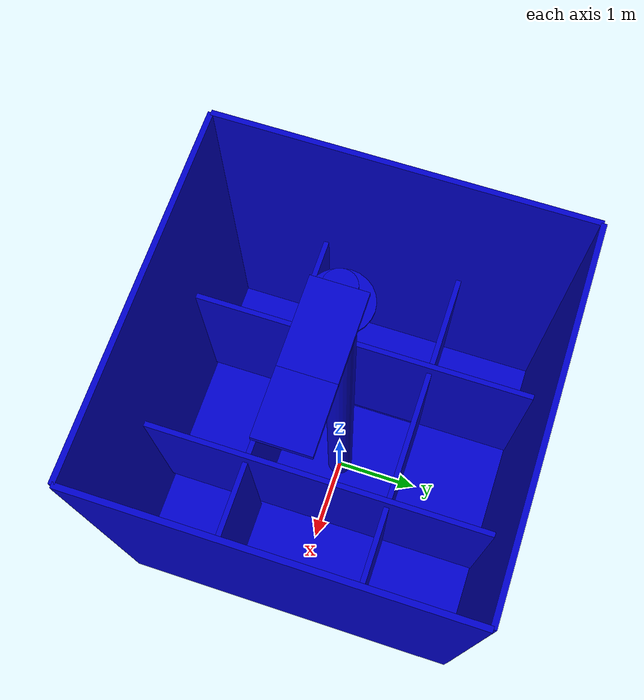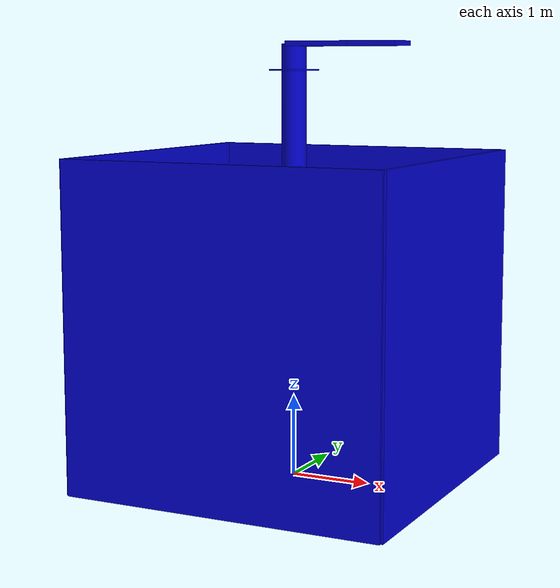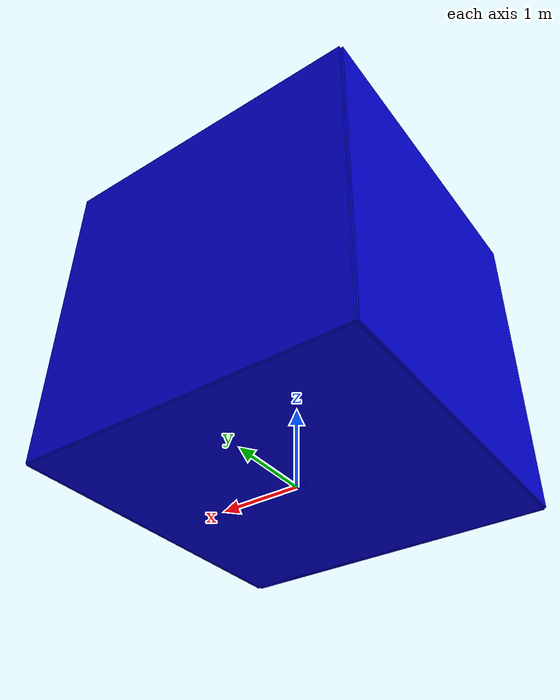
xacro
<?xml version="1.0"?>
<!-- Revolute-Revolute Manipulator -->
<robot name="trash" xmlns:xacro="http://www.ros.org/wiki/xacro">

<xacro:property name="length_table" value="0.8" />
<xacro:property name="width_table" value="1.5" />
<xacro:property name="height_table" value="0.4" />

<xacro:property name="x_center_pick" value="0" />
<xacro:property name="y_center_pick" value="-0.7" />

<xacro:property name="x_center_place" value="0" />
<xacro:property name="y_center_place" value="0.7" />

<xacro:include filename="$(find harshal_proj)/urdf/trash.gazebo" />

<xacro:include filename="$(find harshal_proj)/urdf/materials.xacro" />

<link name="world"/>

<joint name="fixed1" type="fixed">
<parent link="world"/>
<child link="base_table"/>
</joint>

<joint name="fixed_a" type="fixed">
<parent link="world"/>
<child link="drop_a"/>
</joint>

<joint name="fixed_b" type="fixed">
<parent link="world"/>
<child link="drop_b"/>
</joint>

<joint name="fixed_c" type="fixed">
<parent link="world"/>
<child link="drop_c"/>
</joint>

<joint name="fixed_d" type="fixed">
<parent link="world"/>
<child link="drop_d"/>
</joint>

  <link name="base_table">

     <visual>
      <geometry>
          <box size="4 4 0.06"/>
       </geometry>
       <origin xyz="0 0 0.03" rpy="0 0 0"/>
       <material name="blue"/>
     </visual>

    <collision>
       <origin xyz="0 0 0.03" rpy="0 0 0"/>
      <geometry>
          <box size="4 4 0.06"/>
      </geometry>
    </collision>

    <inertial>
      <origin xyz="0 0 0" rpy="0 0 0"/>
      <mass value="0.1"/>
        <inertia ixx="0.001" ixy="0.0" ixz="0.0" iyy="0.001" iyz="0.0" izz="0.001"/>
    </inertial>
  </link>

  <link name="drop_a">

     <visual>
      <geometry>
          <box size="1.6 1.2 0.06"/>
       </geometry>
       <origin xyz="0 1.4 0.09" rpy="0 0 0"/>
       <material name="blue"/>
     </visual>

    <collision>
       <origin xyz="0 1.4 0.09" rpy="0 0 0"/>
      <geometry>
          <box size="1.6 1.2 0.06"/>
      </geometry>
    </collision>

    <inertial>
      <origin xyz="0 0 0" rpy="0 0 0"/>
      <mass value="0.1"/>
        <inertia ixx="0.001" ixy="0.0" ixz="0.0" iyy="0.001" iyz="0.0" izz="0.001"/>
    </inertial>
  </link>

  <link name="drop_b">

     <visual>
      <geometry>
          <box size="1.6 1.2 0.06"/>
       </geometry>
       <origin xyz="0 -1.4 0.09" rpy="0 0 0"/>
       <material name="blue"/>
     </visual>

    <collision>
       <origin xyz="0 -1.4 0.09" rpy="0 0 0"/>
      <geometry>
          <box size="1.6 1.2 0.06"/>
      </geometry>
    </collision>

    <inertial>
      <origin xyz="0 0 0" rpy="0 0 0"/>
      <mass value="0.1"/>
        <inertia ixx="0.001" ixy="0.0" ixz="0.0" iyy="0.001" iyz="0.0" izz="0.001"/>
    </inertial>
  </link>

  <link name="drop_c">

     <visual>
      <geometry>
          <box size="1.2 1.6 0.06"/>
       </geometry>
       <origin xyz="1.4 0 0.09" rpy="0 0 0"/>
       <material name="blue"/>
     </visual>

    <collision>
       <origin xyz="1.4 0 0.09" rpy="0 0 0"/>
      <geometry>
          <box size="1.2 1.6 0.06"/>
      </geometry>
    </collision>

    <inertial>
      <origin xyz="0 0 0" rpy="0 0 0"/>
      <mass value="0.1"/>
        <inertia ixx="0.001" ixy="0.0" ixz="0.0" iyy="0.001" iyz="0.0" izz="0.001"/>
    </inertial>
  </link>

  <link name="drop_d">

     <visual>
      <geometry>
          <box size="1.2 1.6 0.06"/>
       </geometry>
       <origin xyz="-1.4 0 0.09" rpy="0 0 0"/>
       <material name="blue"/>
     </visual>

    <collision>
       <origin xyz="-1.4 0 0.09" rpy="0 0 0"/>
      <geometry>
          <box size="1.2 1.6 0.06"/>
      </geometry>
    </collision>

    <inertial>
      <origin xyz="0 0 0" rpy="0 0 0"/>
      <mass value="0.1"/>
        <inertia ixx="0.001" ixy="0.0" ixz="0.0" iyy="0.001" iyz="0.0" izz="0.001"/>
    </inertial>
  </link>

  <link name="left_wall">

     <visual>
      <geometry>
          <box size="0.06 4 4"/>
       </geometry>
       <origin xyz="0 0 2" rpy="0 0 0"/>
       <material name="blue"/>
     </visual>

    <collision>
       <origin xyz="0 0 2" rpy="0 0 0"/>
      <geometry>
          <box size="0.06 4 4"/>
      </geometry>
    </collision>

    <inertial>
      <origin xyz="0 0 0" rpy="0 0 0"/>
      <mass value="0.1"/>
        <inertia ixx="0.001" ixy="0.0" ixz="0.0" iyy="0.001" iyz="0.0" izz="0.001"/>
    </inertial>
  </link>

  <link name="right_wall">

     <visual>
      <geometry>
          <box size="0.06 4 4"/>
       </geometry>
       <origin xyz="0 0 2" rpy="0 0 0"/>
       <material name="blue"/>
     </visual>

    <collision>
       <origin xyz="0 0 2" rpy="0 0 0"/>
      <geometry>
          <box size="0.06 4 4"/>
      </geometry>
    </collision>

    <inertial>
      <origin xyz="0 0 0" rpy="0 0 0"/>
      <mass value="0.1"/>
        <inertia ixx="0.001" ixy="0.0" ixz="0.0" iyy="0.001" iyz="0.0" izz="0.001"/>
    </inertial>
  </link>

  <link name="front_wall">

     <visual>
      <geometry>
          <box size="4 0.06 4"/>
       </geometry>
       <origin xyz="0 0 2" rpy="0 0 0"/>
       <material name="blue"/>
     </visual>

    <collision>
       <origin xyz="0 0 2" rpy="0 0 0"/>
      <geometry>
          <box size="4 0.06 4"/>
      </geometry>
    </collision>

    <inertial>
      <origin xyz="0 0 0" rpy="0 0 0"/>
      <mass value="0.1"/>
        <inertia ixx="0.001" ixy="0.0" ixz="0.0" iyy="0.001" iyz="0.0" izz="0.001"/>
    </inertial>
  </link>

  <link name="rear_wall">

     <visual>
      <geometry>
          <box size="4 0.06 4"/>
       </geometry>
       <origin xyz="0 0 2" rpy="0 0 0"/>
       <material name="blue"/>
     </visual>

    <collision>
       <origin xyz="0 0 2" rpy="0 0 0"/>
      <geometry>
          <box size="4 0.06 4"/>
      </geometry>
    </collision>

    <inertial>
      <origin xyz="0 0 0" rpy="0 0 0"/>
      <mass value="0.1"/>
        <inertia ixx="0.001" ixy="0.0" ixz="0.0" iyy="0.001" iyz="0.0" izz="0.001"/>
    </inertial>
  </link>

  <link name="left_partition">

     <visual>
      <geometry>
          <box size="0.06 4 2"/>
       </geometry>
       <origin xyz="0 0 1.2" rpy="0 0 0"/>
       <material name="blue"/>
     </visual>

    <collision>
       <origin xyz="0 0 1.2" rpy="0 0 0"/>
      <geometry>
          <box size="0.06 4 2"/>
      </geometry>
    </collision>

    <inertial>
      <origin xyz="0 0 0" rpy="0 0 0"/>
      <mass value="0.1"/>
        <inertia ixx="0.001" ixy="0.0" ixz="0.0" iyy="0.001" iyz="0.0" izz="0.001"/>
    </inertial>
  </link>

  <link name="right_partition">

     <visual>
      <geometry>
          <box size="0.06 4 2"/>
       </geometry>
       <origin xyz="0 0 1.2" rpy="0 0 0"/>
       <material name="blue"/>
     </visual>

    <collision>
       <origin xyz="0 0 1.2" rpy="0 0 0"/>
      <geometry>
          <box size="0.06 4 2"/>
      </geometry>
    </collision>

    <inertial>
      <origin xyz="0 0 0" rpy="0 0 0"/>
      <mass value="0.1"/>
        <inertia ixx="0.001" ixy="0.0" ixz="0.0" iyy="0.001" iyz="0.0" izz="0.001"/>
    </inertial>
  </link>

  <link name="upper_partition_a">

     <visual>
      <geometry>
          <box size="1.1 0.06 2"/>
       </geometry>
       <origin xyz="0 0 1.1" rpy="0 0 0"/>
       <material name="blue"/>
     </visual>

    <collision>
       <origin xyz="0 0 1.1" rpy="0 0 0"/>
      <geometry>
          <box size="1.1 0.06 2"/>
      </geometry>
    </collision>

    <inertial>
      <origin xyz="0 0 0" rpy="0 0 0"/>
      <mass value="0.1"/>
        <inertia ixx="0.001" ixy="0.0" ixz="0.0" iyy="0.001" iyz="0.0" izz="0.001"/>
    </inertial>
  </link>

  <link name="upper_partition_b">

     <visual>
      <geometry>
           <box size="1.5 0.06 2"/>
       </geometry>
       <origin xyz="0 0 1.1" rpy="0 0 0"/>
       <material name="blue"/>
     </visual>

    <collision>
       <origin xyz="0 0 1.1" rpy="0 0 0"/>
      <geometry>
           <box size="1.6 0.06 2"/>
      </geometry>
    </collision>

    <inertial>
      <origin xyz="0 0 0" rpy="0 0 0"/>
      <mass value="0.1"/>
        <inertia ixx="0.001" ixy="0.0" ixz="0.0" iyy="0.001" iyz="0.0" izz="0.001"/>
    </inertial>
  </link>

    <link name="upper_partition_c">

     <visual>
      <geometry>
          <box size="1.1 0.06 2"/>
       </geometry>
       <origin xyz="0 0 1.1" rpy="0 0 0"/>
       <material name="blue"/>
     </visual>

    <collision>
       <origin xyz="0 0 1.1" rpy="0 0 0"/>
      <geometry>
          <box size="1.1 0.06 2"/>
      </geometry>
    </collision>

    <inertial>
      <origin xyz="0 0 0" rpy="0 0 0"/>
      <mass value="0.1"/>
        <inertia ixx="0.001" ixy="0.0" ixz="0.0" iyy="0.001" iyz="0.0" izz="0.001"/>
    </inertial>
  </link>

  <link name="lower_partition_a">

     <visual>
      <geometry>
          <box size="1.1 0.06 2"/>
       </geometry>
       <origin xyz="0 0 1.1" rpy="0 0 0"/>
       <material name="blue"/>
     </visual>

    <collision>
       <origin xyz="0 0 1.1" rpy="0 0 0"/>
      <geometry>
          <box size="1.1 0.06 2"/>
      </geometry>
    </collision>

    <inertial>
      <origin xyz="0 0 0" rpy="0 0 0"/>
      <mass value="0.1"/>
        <inertia ixx="0.001" ixy="0.0" ixz="0.0" iyy="0.001" iyz="0.0" izz="0.001"/>
    </inertial>
  </link>

  <link name="lower_partition_b">

     <visual>
      <geometry>
           <box size="1.5 0.06 2"/>
       </geometry>
       <origin xyz="0 0 1.1" rpy="0 0 0"/>
       <material name="blue"/>
     </visual>

    <collision>
       <origin xyz="0 0 1.1" rpy="0 0 0"/>
      <geometry>
           <box size="1.5 0.06 2"/>
      </geometry>
    </collision>

    <inertial>
      <origin xyz="0 0 0" rpy="0 0 0"/>
      <mass value="0.1"/>
        <inertia ixx="0.001" ixy="0.0" ixz="0.0" iyy="0.001" iyz="0.0" izz="0.001"/>
    </inertial>
  </link>

    <link name="lower_partition_c">

     <visual>
      <geometry>
          <box size="1.1 0.06 2"/>
       </geometry>
       <origin xyz="0 0 1.1" rpy="0 0 0"/>
       <material name="blue"/>
     </visual>

    <collision>
       <origin xyz="0 0 1.1" rpy="0 0 0"/>
      <geometry>
          <box size="1.1 0.06 2"/>
      </geometry>
    </collision>

    <inertial>
      <origin xyz="0 0 0" rpy="0 0 0"/>
      <mass value="0.1"/>
        <inertia ixx="0.001" ixy="0.0" ixz="0.0" iyy="0.001" iyz="0.0" izz="0.001"/>
    </inertial>
  </link>

    <link name="cylinder">

     <visual>
      <geometry>
        <cylinder length="5" radius="0.15"/>
       </geometry>
       <origin xyz="0 0 2.5" rpy="0 0 0"/>
       <material name="blue"/>
     </visual>

    <collision>
       <origin xyz="0 0 2.5" rpy="0 0 0"/>
      <geometry>
        <cylinder length="5" radius="0.15"/>
      </geometry>
    </collision>

    <inertial>
      <origin xyz="0 0 0" rpy="0 0 0"/>
      <mass value="0.1"/>
        <inertia ixx="0.001" ixy="0.0" ixz="0.0" iyy="0.001" iyz="0.0" izz="0.001"/>
    </inertial>
  </link>

    <link name="disc">

     <visual>
      <geometry>
        <cylinder length="0.02" radius="0.3"/>
       </geometry>
       <origin xyz="0 0 0.01" rpy="0 0 0"/>
       <material name="blue"/>
     </visual>

    <collision>
       <origin xyz="0 0 0.01" rpy="0 0 0"/>
      <geometry>
        <cylinder length="0.02" radius="0.3"/>
      </geometry>
    </collision>

    <inertial>
      <origin xyz="0 0 0" rpy="0 0 0"/>
      <mass value="0.1"/>
        <inertia ixx="0.001" ixy="0.0" ixz="0.0" iyy="0.001" iyz="0.0" izz="0.001"/>
    </inertial>
  </link>

      <link name="rotor">

     <visual>
      <geometry>
        <cylinder length="0.3" radius="0.15"/>
       </geometry>
       <origin xyz="0 0 0.15" rpy="0 0 0"/>
       <material name="blue"/>
     </visual>

    <collision>
       <origin xyz="0 0 0.15" rpy="0 0 0"/>
      <geometry>
        <cylinder length="0.3" radius="0.15"/>
      </geometry>
    </collision>

    <inertial>
      <origin xyz="0 0 0" rpy="0 0 0"/>
      <mass value="0.1"/>
        <inertia ixx="0.001" ixy="0.0" ixz="0.0" iyy="0.001" iyz="0.0" izz="0.001"/>
    </inertial>
  </link>

    <link name="flap_link">

     <visual>
      <geometry>
          <box size="0.8 0.5 0.06"/>
       </geometry>
       <origin xyz="0.4 0 0" rpy="0 0 0"/>
       <material name="blue"/>
     </visual>

    <collision>
       <origin xyz="0.4 0 0" rpy="0 0 0"/>
      <geometry>
          <box size="0.8 0.5 0.06"/>
      </geometry>
    </collision>

    <inertial>
      <origin xyz="0 0 0" rpy="0 0 0"/>
      <mass value="0.1"/>
        <inertia ixx="0.001" ixy="0.0" ixz="0.0" iyy="0.001" iyz="0.0" izz="0.001"/>
    </inertial>
  </link>

      <link name="flap_link_2">

     <visual>
      <geometry>
          <box size="0.6 0.5 0.06"/>
       </geometry>
       <origin xyz="0.3 0 0" rpy="0 0 0"/>
       <material name="blue"/>
     </visual>

    <collision>
       <origin xyz="0.3 0 0" rpy="0 0 0"/>
      <geometry>
          <box size="0.6 0.5 0.06"/>
      </geometry>
    </collision>

    <inertial>
      <origin xyz="0 0 0" rpy="0 0 0"/>
      <mass value="0.1"/>
        <inertia ixx="0.001" ixy="0.0" ixz="0.0" iyy="0.001" iyz="0.0" izz="0.001"/>
    </inertial>
  </link>

  <joint name="base_left" type="fixed">
     <parent link="base_table"/>
     <child link="left_wall"/>
     <origin xyz="-2 0 0" rpy="0 0 0"/>
  </joint>

  <joint name="base_right" type="fixed">
     <parent link="base_table"/>
     <child link="right_wall"/>
     <origin xyz="2 0 0" rpy="0 0 0"/>
  </joint>

  <joint name="base_front" type="fixed">
     <parent link="base_table"/>
     <child link="front_wall"/>
     <origin xyz="0 2 0" rpy="0 0 0"/>
  </joint>

    <joint name="base_rear" type="fixed">
     <parent link="base_table"/>
     <child link="rear_wall"/>
     <origin xyz="0 -2 0" rpy="0 0 0"/>
  </joint>

  <joint name="base_left_partition" type="fixed">
     <parent link="base_table"/>
     <child link="left_partition"/>
     <origin xyz="-0.8 0 0" rpy="0 0 0"/>
  </joint>

  <joint name="base_right_partition" type="fixed">
     <parent link="base_table"/>
     <child link="right_partition"/>
     <origin xyz="0.8 0 0" rpy="0 0 0"/>
  </joint>

  <joint name="base_upper_partition_a" type="fixed">
     <parent link="base_table"/>
     <child link="upper_partition_a"/>
     <origin xyz="-1.4 0.8 0" rpy="0 0 0"/>
  </joint>

  <joint name="base_upper_partition_b" type="fixed">
     <parent link="base_table"/>
     <child link="upper_partition_b"/>
     <origin xyz="0 0.8 0" rpy="0 0 0"/>
  </joint>

    <joint name="base_upper_partition_c" type="fixed">
     <parent link="base_table"/>
     <child link="upper_partition_c"/>
     <origin xyz="1.4 0.8 0" rpy="0 0 0"/>
  </joint>

  <joint name="base_lower_partition_a" type="fixed">
     <parent link="base_table"/>
     <child link="lower_partition_a"/>
     <origin xyz="-1.4 -0.8 0" rpy="0 0 0"/>
  </joint>

  <joint name="base_lower_partition_b" type="fixed">
     <parent link="base_table"/>
     <child link="lower_partition_b"/>
     <origin xyz="0 -0.8 0" rpy="0 0 0"/>
  </joint>

    <joint name="base_lower_partition_c" type="fixed">
     <parent link="base_table"/>
     <child link="lower_partition_c"/>
     <origin xyz="1.4 -0.8 0" rpy="0 0 0"/>
  </joint>

    <joint name="base_cylinder" type="fixed">
     <parent link="base_table"/>
     <child link="cylinder"/>
     <origin xyz="0 0 0" rpy="0 0 0"/>
  </joint>

    <joint name="cylinder_to_disc" type="fixed">
     <parent link="cylinder"/>
     <child link="disc"/>
     <origin xyz="0 0 5" rpy="0 0 0"/>
  </joint>

    <joint name="disc_to_rotor" type="fixed">
     <parent link="disc"/>
     <child link="rotor"/>
     <origin xyz="0 0 0.02" rpy="0 0 0"/>
  </joint>

  <joint name="rotor_flap" type="continuous">
     <parent link="rotor"/>
     <child link="flap_link"/>
     <origin xyz="0 0 0.3" rpy="0 0 0"/>
     <axis xyz="0 0 1"/>
     <dynamics damping="1.7" />
  </joint>

    <joint name="flap_flap2" type="continuous">
     <parent link="flap_link"/>
     <child link="flap_link_2"/>
     <origin xyz="0.8 0 0" rpy="0 0 0"/>
     <axis xyz="0 1 0"/>
     <dynamics damping="1.7" />
  </joint>

 <transmission name="tran1">
    <type>transmission_interface/SimpleTransmission</type>
    <joint name="rotor_flap">
      <hardwareInterface>hardware_interface/EffortJointInterface</hardwareInterface>
    </joint>
    <actuator name="motor1">
      <hardwareInterface>hardware_interface/EffortJointInterface</hardwareInterface>
      <mechanicalReduction>1</mechanicalReduction>
    </actuator>
  </transmission>

    <transmission name="tran2">
    <type>transmission_interface/SimpleTransmission</type>
    <joint name="flap_flap2">
      <hardwareInterface>hardware_interface/EffortJointInterface</hardwareInterface>
    </joint>
    <actuator name="motor2">
      <hardwareInterface>hardware_interface/EffortJointInterface</hardwareInterface>
      <mechanicalReduction>1</mechanicalReduction>
    </actuator>
  </transmission>

</robot>

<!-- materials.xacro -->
<robot>

  <material name="black">
    <color rgba="0.0 0.0 0.0 1.0"/>
  </material>

  <material name="blue">
    <color rgba="0.0 0.0 0.8 1.0"/>
  </material>

  <material name="green">
    <color rgba="0.0 0.8 0.0 1.0"/>
  </material>

  <material name="grey">
    <color rgba="0.2 0.2 0.2 1.0"/>
  </material>

  <material name="orange">
    <color rgba="${255/255} ${108/255} ${10/255} 1.0"/>
  </material>

  <material name="brown">
    <color rgba="0.87 0.81 0.76 1.0"/>
  </material>

  <material name="red">
    <color rgba="0.8 0.0 0.0 1.0"/>
  </material>

  <material name="white">
    <color rgba="1.0 1.0 1.0 1.0"/>
  </material>

</robot>
